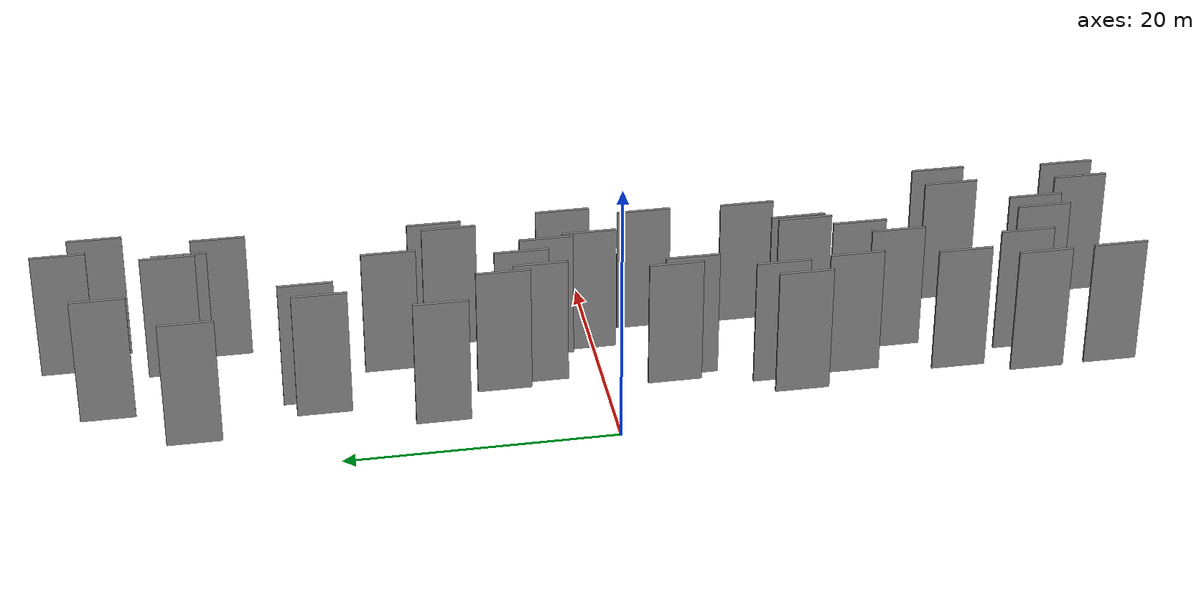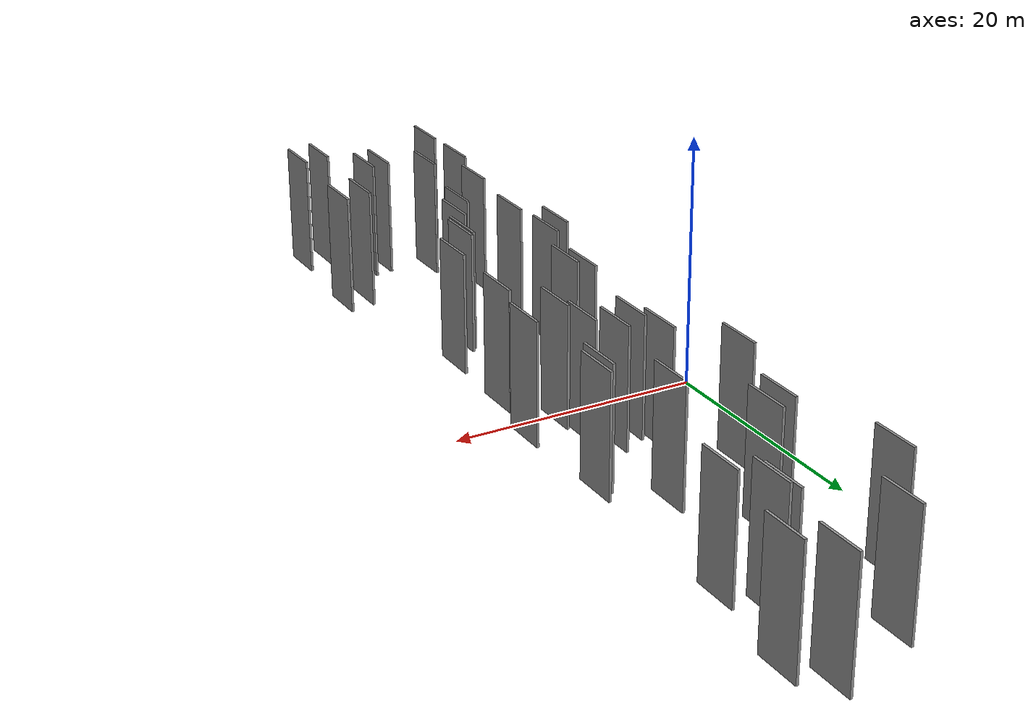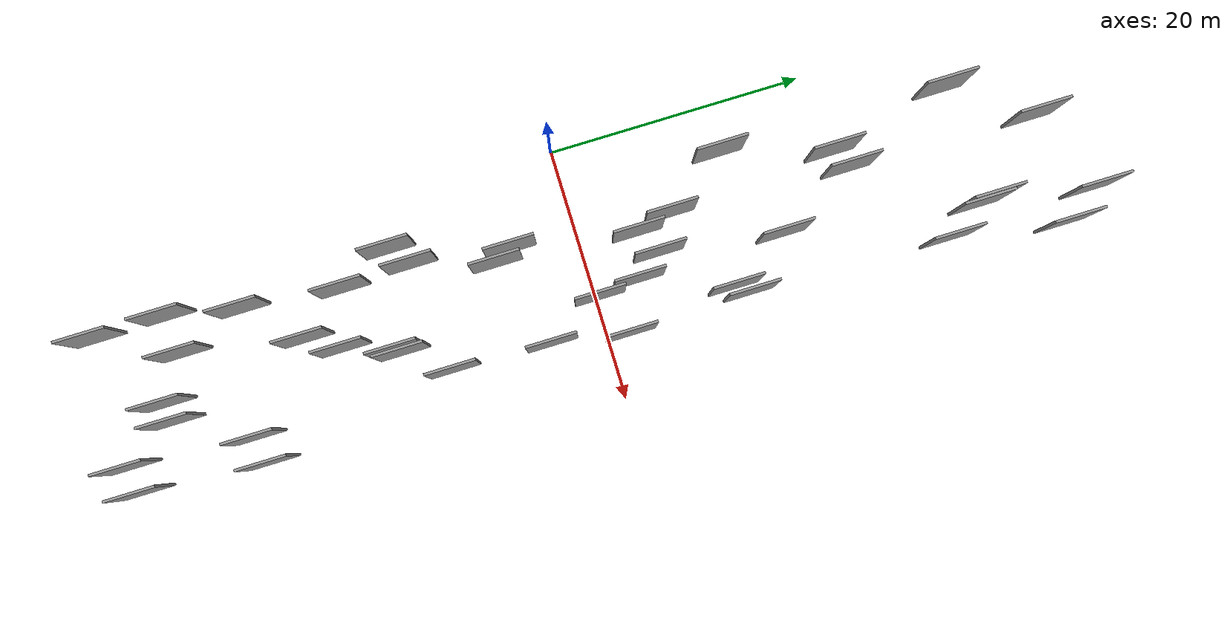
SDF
<sdf version="1.6">
 <world name="default">
  <scene>
   <sky><clouds><speed>12</speed></clouds></sky>
   <ambient>0.4 0.4 0.4 1</ambient>
   <background>0.7 0.7 0.7 1</background>
   <shadows>1</shadows>
  </scene>
  <gravity>0 0 -9.8066</gravity>
  <magnetic_field>6e-06 2.3e-05 -4.2e-05</magnetic_field>
  <physics default="0" name="default_physics" type="ode">
   <ode>
    <solver>
     <type>quick</type>
     <iters>10</iters>
     <sor>1.0</sor>
     <use_dynamic_moi_rescaling>0</use_dynamic_moi_rescaling>
    </solver>
    <constraints>
     <cfm>0</cfm>
     <erp>0.2</erp>
     <contact_max_correcting_vel>100</contact_max_correcting_vel>
     <contact_surface_layer>0.001</contact_surface_layer>
    </constraints>
   </ode>
   <max_step_size>0.004</max_step_size>
   <real_time_factor>1</real_time_factor>
   <real_time_update_rate>250</real_time_update_rate>
  </physics>
  <light name="sun" type="directional">
   <pose>0 0 10 0 0 0</pose>
   <diffuse>0.8 0.8 0.8 1</diffuse>
   <specular>0.2 0.2 0.2 1</specular>
   <attenuation>
    <range>1000</range>
    <constant>0.9</constant>
    <linear>0.01</linear>
    <quadratic>0.001</quadratic>
   </attenuation>
   <direction>-0.5 0.1 -0.9</direction>
  </light>
  <model name="grey_wall_1">
   <static>1</static>
   <pose>16.8751 36.0884 0.0 0.000000 0.000000 1.570796</pose>
   <link name="link">
    <pose>0 0 5.00 0 0 0</pose>
    <collision name="collision"><geometry><box><size>4.00 0.2 10.00</size></box></geometry></collision>
    <visual name="visual">
     <cast_shadows>0</cast_shadows>
     <geometry><box><size>4.00 0.2 10.00</size></box></geometry>
     <material>
      <script>
       <uri>model://grey_wall/materials/scripts</uri>
       <uri>model://grey_wall/materials/textures</uri>
       <name>vrc/grey_wall</name>
      </script>
     </material>
    </visual>
   </link>
  </model>
  <model name="grey_wall_2">
   <static>1</static>
   <pose>11.9350 0.3305 0.0 0.000000 0.000000 1.570796</pose>
   <link name="link">
    <pose>0 0 5.00 0 0 0</pose>
    <collision name="collision"><geometry><box><size>4.00 0.2 10.00</size></box></geometry></collision>
    <visual name="visual">
     <cast_shadows>0</cast_shadows>
     <geometry><box><size>4.00 0.2 10.00</size></box></geometry>
     <material>
      <script>
       <uri>model://grey_wall/materials/scripts</uri>
       <uri>model://grey_wall/materials/textures</uri>
       <name>vrc/grey_wall</name>
      </script>
     </material>
    </visual>
   </link>
  </model>
  <model name="grey_wall_3">
   <static>1</static>
   <pose>8.0137 21.4762 0.0 0.000000 0.000000 1.570796</pose>
   <link name="link">
    <pose>0 0 5.00 0 0 0</pose>
    <collision name="collision"><geometry><box><size>4.00 0.2 10.00</size></box></geometry></collision>
    <visual name="visual">
     <cast_shadows>0</cast_shadows>
     <geometry><box><size>4.00 0.2 10.00</size></box></geometry>
     <material>
      <script>
       <uri>model://grey_wall/materials/scripts</uri>
       <uri>model://grey_wall/materials/textures</uri>
       <name>vrc/grey_wall</name>
      </script>
     </material>
    </visual>
   </link>
  </model>
  <model name="grey_wall_4">
   <static>1</static>
   <pose>13.9811 -37.6866 0.0 0.000000 0.000000 1.570796</pose>
   <link name="link">
    <pose>0 0 5.00 0 0 0</pose>
    <collision name="collision"><geometry><box><size>4.00 0.2 10.00</size></box></geometry></collision>
    <visual name="visual">
     <cast_shadows>0</cast_shadows>
     <geometry><box><size>4.00 0.2 10.00</size></box></geometry>
     <material>
      <script>
       <uri>model://grey_wall/materials/scripts</uri>
       <uri>model://grey_wall/materials/textures</uri>
       <name>vrc/grey_wall</name>
      </script>
     </material>
    </visual>
   </link>
  </model>
  <model name="grey_wall_5">
   <static>1</static>
   <pose>3.7342 -14.1265 0.0 0.000000 0.000000 1.570796</pose>
   <link name="link">
    <pose>0 0 5.00 0 0 0</pose>
    <collision name="collision"><geometry><box><size>4.00 0.2 10.00</size></box></geometry></collision>
    <visual name="visual">
     <cast_shadows>0</cast_shadows>
     <geometry><box><size>4.00 0.2 10.00</size></box></geometry>
     <material>
      <script>
       <uri>model://grey_wall/materials/scripts</uri>
       <uri>model://grey_wall/materials/textures</uri>
       <name>vrc/grey_wall</name>
      </script>
     </material>
    </visual>
   </link>
  </model>
  <model name="grey_wall_6">
   <static>1</static>
   <pose>14.1956 10.4184 0.0 0.000000 0.000000 1.570796</pose>
   <link name="link">
    <pose>0 0 5.00 0 0 0</pose>
    <collision name="collision"><geometry><box><size>4.00 0.2 10.00</size></box></geometry></collision>
    <visual name="visual">
     <cast_shadows>0</cast_shadows>
     <geometry><box><size>4.00 0.2 10.00</size></box></geometry>
     <material>
      <script>
       <uri>model://grey_wall/materials/scripts</uri>
       <uri>model://grey_wall/materials/textures</uri>
       <name>vrc/grey_wall</name>
      </script>
     </material>
    </visual>
   </link>
  </model>
  <model name="grey_wall_7">
   <static>1</static>
   <pose>16.7592 -27.3400 0.0 0.000000 0.000000 1.570796</pose>
   <link name="link">
    <pose>0 0 5.00 0 0 0</pose>
    <collision name="collision"><geometry><box><size>4.00 0.2 10.00</size></box></geometry></collision>
    <visual name="visual">
     <cast_shadows>0</cast_shadows>
     <geometry><box><size>4.00 0.2 10.00</size></box></geometry>
     <material>
      <script>
       <uri>model://grey_wall/materials/scripts</uri>
       <uri>model://grey_wall/materials/textures</uri>
       <name>vrc/grey_wall</name>
      </script>
     </material>
    </visual>
   </link>
  </model>
  <model name="grey_wall_8">
   <static>1</static>
   <pose>11.6335 -15.3026 0.0 0.000000 0.000000 1.570796</pose>
   <link name="link">
    <pose>0 0 5.00 0 0 0</pose>
    <collision name="collision"><geometry><box><size>4.00 0.2 10.00</size></box></geometry></collision>
    <visual name="visual">
     <cast_shadows>0</cast_shadows>
     <geometry><box><size>4.00 0.2 10.00</size></box></geometry>
     <material>
      <script>
       <uri>model://grey_wall/materials/scripts</uri>
       <uri>model://grey_wall/materials/textures</uri>
       <name>vrc/grey_wall</name>
      </script>
     </material>
    </visual>
   </link>
  </model>
  <model name="grey_wall_9">
   <static>1</static>
   <pose>4.1911 30.1464 0.0 0.000000 0.000000 1.570796</pose>
   <link name="link">
    <pose>0 0 5.00 0 0 0</pose>
    <collision name="collision"><geometry><box><size>4.00 0.2 10.00</size></box></geometry></collision>
    <visual name="visual">
     <cast_shadows>0</cast_shadows>
     <geometry><box><size>4.00 0.2 10.00</size></box></geometry>
     <material>
      <script>
       <uri>model://grey_wall/materials/scripts</uri>
       <uri>model://grey_wall/materials/textures</uri>
       <name>vrc/grey_wall</name>
      </script>
     </material>
    </visual>
   </link>
  </model>
  <model name="grey_wall_10">
   <static>1</static>
   <pose>11.2698 -15.7501 0.0 0.000000 0.000000 1.570796</pose>
   <link name="link">
    <pose>0 0 5.00 0 0 0</pose>
    <collision name="collision"><geometry><box><size>4.00 0.2 10.00</size></box></geometry></collision>
    <visual name="visual">
     <cast_shadows>0</cast_shadows>
     <geometry><box><size>4.00 0.2 10.00</size></box></geometry>
     <material>
      <script>
       <uri>model://grey_wall/materials/scripts</uri>
       <uri>model://grey_wall/materials/textures</uri>
       <name>vrc/grey_wall</name>
      </script>
     </material>
    </visual>
   </link>
  </model>
  <model name="grey_wall_11">
   <static>1</static>
   <pose>5.3530 -12.8099 0.0 0.000000 0.000000 1.570796</pose>
   <link name="link">
    <pose>0 0 5.00 0 0 0</pose>
    <collision name="collision"><geometry><box><size>4.00 0.2 10.00</size></box></geometry></collision>
    <visual name="visual">
     <cast_shadows>0</cast_shadows>
     <geometry><box><size>4.00 0.2 10.00</size></box></geometry>
     <material>
      <script>
       <uri>model://grey_wall/materials/scripts</uri>
       <uri>model://grey_wall/materials/textures</uri>
       <name>vrc/grey_wall</name>
      </script>
     </material>
    </visual>
   </link>
  </model>
  <model name="grey_wall_12">
   <static>1</static>
   <pose>3.9442 12.2792 0.0 0.000000 0.000000 1.570796</pose>
   <link name="link">
    <pose>0 0 5.00 0 0 0</pose>
    <collision name="collision"><geometry><box><size>4.00 0.2 10.00</size></box></geometry></collision>
    <visual name="visual">
     <cast_shadows>0</cast_shadows>
     <geometry><box><size>4.00 0.2 10.00</size></box></geometry>
     <material>
      <script>
       <uri>model://grey_wall/materials/scripts</uri>
       <uri>model://grey_wall/materials/textures</uri>
       <name>vrc/grey_wall</name>
      </script>
     </material>
    </visual>
   </link>
  </model>
  <model name="grey_wall_13">
   <static>1</static>
   <pose>6.4200 20.6335 0.0 0.000000 0.000000 1.570796</pose>
   <link name="link">
    <pose>0 0 5.00 0 0 0</pose>
    <collision name="collision"><geometry><box><size>4.00 0.2 10.00</size></box></geometry></collision>
    <visual name="visual">
     <cast_shadows>0</cast_shadows>
     <geometry><box><size>4.00 0.2 10.00</size></box></geometry>
     <material>
      <script>
       <uri>model://grey_wall/materials/scripts</uri>
       <uri>model://grey_wall/materials/textures</uri>
       <name>vrc/grey_wall</name>
      </script>
     </material>
    </visual>
   </link>
  </model>
  <model name="grey_wall_14">
   <static>1</static>
   <pose>7.1862 -6.4948 0.0 0.000000 0.000000 1.570796</pose>
   <link name="link">
    <pose>0 0 5.00 0 0 0</pose>
    <collision name="collision"><geometry><box><size>4.00 0.2 10.00</size></box></geometry></collision>
    <visual name="visual">
     <cast_shadows>0</cast_shadows>
     <geometry><box><size>4.00 0.2 10.00</size></box></geometry>
     <material>
      <script>
       <uri>model://grey_wall/materials/scripts</uri>
       <uri>model://grey_wall/materials/textures</uri>
       <name>vrc/grey_wall</name>
      </script>
     </material>
    </visual>
   </link>
  </model>
  <model name="grey_wall_15">
   <static>1</static>
   <pose>3.7817 -37.5315 0.0 0.000000 0.000000 1.570796</pose>
   <link name="link">
    <pose>0 0 5.00 0 0 0</pose>
    <collision name="collision"><geometry><box><size>4.00 0.2 10.00</size></box></geometry></collision>
    <visual name="visual">
     <cast_shadows>0</cast_shadows>
     <geometry><box><size>4.00 0.2 10.00</size></box></geometry>
     <material>
      <script>
       <uri>model://grey_wall/materials/scripts</uri>
       <uri>model://grey_wall/materials/textures</uri>
       <name>vrc/grey_wall</name>
      </script>
     </material>
    </visual>
   </link>
  </model>
  <model name="grey_wall_16">
   <static>1</static>
   <pose>5.6121 -18.3275 0.0 0.000000 0.000000 1.570796</pose>
   <link name="link">
    <pose>0 0 5.00 0 0 0</pose>
    <collision name="collision"><geometry><box><size>4.00 0.2 10.00</size></box></geometry></collision>
    <visual name="visual">
     <cast_shadows>0</cast_shadows>
     <geometry><box><size>4.00 0.2 10.00</size></box></geometry>
     <material>
      <script>
       <uri>model://grey_wall/materials/scripts</uri>
       <uri>model://grey_wall/materials/textures</uri>
       <name>vrc/grey_wall</name>
      </script>
     </material>
    </visual>
   </link>
  </model>
  <model name="grey_wall_17">
   <static>1</static>
   <pose>3.6987 -31.8953 0.0 0.000000 0.000000 1.570796</pose>
   <link name="link">
    <pose>0 0 5.00 0 0 0</pose>
    <collision name="collision"><geometry><box><size>4.00 0.2 10.00</size></box></geometry></collision>
    <visual name="visual">
     <cast_shadows>0</cast_shadows>
     <geometry><box><size>4.00 0.2 10.00</size></box></geometry>
     <material>
      <script>
       <uri>model://grey_wall/materials/scripts</uri>
       <uri>model://grey_wall/materials/textures</uri>
       <name>vrc/grey_wall</name>
      </script>
     </material>
    </visual>
   </link>
  </model>
  <model name="grey_wall_18">
   <static>1</static>
   <pose>7.3652 7.3415 0.0 0.000000 0.000000 1.570796</pose>
   <link name="link">
    <pose>0 0 5.00 0 0 0</pose>
    <collision name="collision"><geometry><box><size>4.00 0.2 10.00</size></box></geometry></collision>
    <visual name="visual">
     <cast_shadows>0</cast_shadows>
     <geometry><box><size>4.00 0.2 10.00</size></box></geometry>
     <material>
      <script>
       <uri>model://grey_wall/materials/scripts</uri>
       <uri>model://grey_wall/materials/textures</uri>
       <name>vrc/grey_wall</name>
      </script>
     </material>
    </visual>
   </link>
  </model>
  <model name="grey_wall_19">
   <static>1</static>
   <pose>8.2868 36.1251 0.0 0.000000 0.000000 1.570796</pose>
   <link name="link">
    <pose>0 0 5.00 0 0 0</pose>
    <collision name="collision"><geometry><box><size>4.00 0.2 10.00</size></box></geometry></collision>
    <visual name="visual">
     <cast_shadows>0</cast_shadows>
     <geometry><box><size>4.00 0.2 10.00</size></box></geometry>
     <material>
      <script>
       <uri>model://grey_wall/materials/scripts</uri>
       <uri>model://grey_wall/materials/textures</uri>
       <name>vrc/grey_wall</name>
      </script>
     </material>
    </visual>
   </link>
  </model>
  <model name="grey_wall_20">
   <static>1</static>
   <pose>13.3935 30.9675 0.0 0.000000 0.000000 1.570796</pose>
   <link name="link">
    <pose>0 0 5.00 0 0 0</pose>
    <collision name="collision"><geometry><box><size>4.00 0.2 10.00</size></box></geometry></collision>
    <visual name="visual">
     <cast_shadows>0</cast_shadows>
     <geometry><box><size>4.00 0.2 10.00</size></box></geometry>
     <material>
      <script>
       <uri>model://grey_wall/materials/scripts</uri>
       <uri>model://grey_wall/materials/textures</uri>
       <name>vrc/grey_wall</name>
      </script>
     </material>
    </visual>
   </link>
  </model>
  <model name="grey_wall_21">
   <static>1</static>
   <pose>11.3845 15.1704 0.0 0.000000 0.000000 1.570796</pose>
   <link name="link">
    <pose>0 0 5.00 0 0 0</pose>
    <collision name="collision"><geometry><box><size>4.00 0.2 10.00</size></box></geometry></collision>
    <visual name="visual">
     <cast_shadows>0</cast_shadows>
     <geometry><box><size>4.00 0.2 10.00</size></box></geometry>
     <material>
      <script>
       <uri>model://grey_wall/materials/scripts</uri>
       <uri>model://grey_wall/materials/textures</uri>
       <name>vrc/grey_wall</name>
      </script>
     </material>
    </visual>
   </link>
  </model>
  <model name="grey_wall_22">
   <static>1</static>
   <pose>8.4756 -22.1381 0.0 0.000000 0.000000 1.570796</pose>
   <link name="link">
    <pose>0 0 5.00 0 0 0</pose>
    <collision name="collision"><geometry><box><size>4.00 0.2 10.00</size></box></geometry></collision>
    <visual name="visual">
     <cast_shadows>0</cast_shadows>
     <geometry><box><size>4.00 0.2 10.00</size></box></geometry>
     <material>
      <script>
       <uri>model://grey_wall/materials/scripts</uri>
       <uri>model://grey_wall/materials/textures</uri>
       <name>vrc/grey_wall</name>
      </script>
     </material>
    </visual>
   </link>
  </model>
  <model name="grey_wall_23">
   <static>1</static>
   <pose>4.8376 -26.2017 0.0 0.000000 0.000000 1.570796</pose>
   <link name="link">
    <pose>0 0 5.00 0 0 0</pose>
    <collision name="collision"><geometry><box><size>4.00 0.2 10.00</size></box></geometry></collision>
    <visual name="visual">
     <cast_shadows>0</cast_shadows>
     <geometry><box><size>4.00 0.2 10.00</size></box></geometry>
     <material>
      <script>
       <uri>model://grey_wall/materials/scripts</uri>
       <uri>model://grey_wall/materials/textures</uri>
       <name>vrc/grey_wall</name>
      </script>
     </material>
    </visual>
   </link>
  </model>
  <model name="grey_wall_24">
   <static>1</static>
   <pose>16.1404 -37.2414 0.0 0.000000 0.000000 1.570796</pose>
   <link name="link">
    <pose>0 0 5.00 0 0 0</pose>
    <collision name="collision"><geometry><box><size>4.00 0.2 10.00</size></box></geometry></collision>
    <visual name="visual">
     <cast_shadows>0</cast_shadows>
     <geometry><box><size>4.00 0.2 10.00</size></box></geometry>
     <material>
      <script>
       <uri>model://grey_wall/materials/scripts</uri>
       <uri>model://grey_wall/materials/textures</uri>
       <name>vrc/grey_wall</name>
      </script>
     </material>
    </visual>
   </link>
  </model>
  <model name="grey_wall_25">
   <static>1</static>
   <pose>15.3138 1.7862 0.0 0.000000 0.000000 1.570796</pose>
   <link name="link">
    <pose>0 0 5.00 0 0 0</pose>
    <collision name="collision"><geometry><box><size>4.00 0.2 10.00</size></box></geometry></collision>
    <visual name="visual">
     <cast_shadows>0</cast_shadows>
     <geometry><box><size>4.00 0.2 10.00</size></box></geometry>
     <material>
      <script>
       <uri>model://grey_wall/materials/scripts</uri>
       <uri>model://grey_wall/materials/textures</uri>
       <name>vrc/grey_wall</name>
      </script>
     </material>
    </visual>
   </link>
  </model>
  <model name="grey_wall_26">
   <static>1</static>
   <pose>14.3155 -4.1936 0.0 0.000000 0.000000 1.570796</pose>
   <link name="link">
    <pose>0 0 5.00 0 0 0</pose>
    <collision name="collision"><geometry><box><size>4.00 0.2 10.00</size></box></geometry></collision>
    <visual name="visual">
     <cast_shadows>0</cast_shadows>
     <geometry><box><size>4.00 0.2 10.00</size></box></geometry>
     <material>
      <script>
       <uri>model://grey_wall/materials/scripts</uri>
       <uri>model://grey_wall/materials/textures</uri>
       <name>vrc/grey_wall</name>
      </script>
     </material>
    </visual>
   </link>
  </model>
  <model name="grey_wall_27">
   <static>1</static>
   <pose>8.0430 4.5285 0.0 0.000000 0.000000 1.570796</pose>
   <link name="link">
    <pose>0 0 5.00 0 0 0</pose>
    <collision name="collision"><geometry><box><size>4.00 0.2 10.00</size></box></geometry></collision>
    <visual name="visual">
     <cast_shadows>0</cast_shadows>
     <geometry><box><size>4.00 0.2 10.00</size></box></geometry>
     <material>
      <script>
       <uri>model://grey_wall/materials/scripts</uri>
       <uri>model://grey_wall/materials/textures</uri>
       <name>vrc/grey_wall</name>
      </script>
     </material>
    </visual>
   </link>
  </model>
  <model name="grey_wall_28">
   <static>1</static>
   <pose>15.4421 27.2131 0.0 0.000000 0.000000 1.570796</pose>
   <link name="link">
    <pose>0 0 5.00 0 0 0</pose>
    <collision name="collision"><geometry><box><size>4.00 0.2 10.00</size></box></geometry></collision>
    <visual name="visual">
     <cast_shadows>0</cast_shadows>
     <geometry><box><size>4.00 0.2 10.00</size></box></geometry>
     <material>
      <script>
       <uri>model://grey_wall/materials/scripts</uri>
       <uri>model://grey_wall/materials/textures</uri>
       <name>vrc/grey_wall</name>
      </script>
     </material>
    </visual>
   </link>
  </model>
  <model name="grey_wall_29">
   <static>1</static>
   <pose>6.4164 -5.1505 0.0 0.000000 0.000000 1.570796</pose>
   <link name="link">
    <pose>0 0 5.00 0 0 0</pose>
    <collision name="collision"><geometry><box><size>4.00 0.2 10.00</size></box></geometry></collision>
    <visual name="visual">
     <cast_shadows>0</cast_shadows>
     <geometry><box><size>4.00 0.2 10.00</size></box></geometry>
     <material>
      <script>
       <uri>model://grey_wall/materials/scripts</uri>
       <uri>model://grey_wall/materials/textures</uri>
       <name>vrc/grey_wall</name>
      </script>
     </material>
    </visual>
   </link>
  </model>
  <model name="grey_wall_30">
   <static>1</static>
   <pose>14.5997 -27.7837 0.0 0.000000 0.000000 1.570796</pose>
   <link name="link">
    <pose>0 0 5.00 0 0 0</pose>
    <collision name="collision"><geometry><box><size>4.00 0.2 10.00</size></box></geometry></collision>
    <visual name="visual">
     <cast_shadows>0</cast_shadows>
     <geometry><box><size>4.00 0.2 10.00</size></box></geometry>
     <material>
      <script>
       <uri>model://grey_wall/materials/scripts</uri>
       <uri>model://grey_wall/materials/textures</uri>
       <name>vrc/grey_wall</name>
      </script>
     </material>
    </visual>
   </link>
  </model>
  <model name="grey_wall_31">
   <static>1</static>
   <pose>13.6114 30.1207 0.0 0.000000 0.000000 1.570796</pose>
   <link name="link">
    <pose>0 0 5.00 0 0 0</pose>
    <collision name="collision"><geometry><box><size>4.00 0.2 10.00</size></box></geometry></collision>
    <visual name="visual">
     <cast_shadows>0</cast_shadows>
     <geometry><box><size>4.00 0.2 10.00</size></box></geometry>
     <material>
      <script>
       <uri>model://grey_wall/materials/scripts</uri>
       <uri>model://grey_wall/materials/textures</uri>
       <name>vrc/grey_wall</name>
      </script>
     </material>
    </visual>
   </link>
  </model>
  <model name="grey_wall_32">
   <static>1</static>
   <pose>10.0297 5.6213 0.0 0.000000 0.000000 1.570796</pose>
   <link name="link">
    <pose>0 0 5.00 0 0 0</pose>
    <collision name="collision"><geometry><box><size>4.00 0.2 10.00</size></box></geometry></collision>
    <visual name="visual">
     <cast_shadows>0</cast_shadows>
     <geometry><box><size>4.00 0.2 10.00</size></box></geometry>
     <material>
      <script>
       <uri>model://grey_wall/materials/scripts</uri>
       <uri>model://grey_wall/materials/textures</uri>
       <name>vrc/grey_wall</name>
      </script>
     </material>
    </visual>
   </link>
  </model>
  <model name="grey_wall_33">
   <static>1</static>
   <pose>14.9207 38.7714 0.0 0.000000 0.000000 1.570796</pose>
   <link name="link">
    <pose>0 0 5.00 0 0 0</pose>
    <collision name="collision"><geometry><box><size>4.00 0.2 10.00</size></box></geometry></collision>
    <visual name="visual">
     <cast_shadows>0</cast_shadows>
     <geometry><box><size>4.00 0.2 10.00</size></box></geometry>
     <material>
      <script>
       <uri>model://grey_wall/materials/scripts</uri>
       <uri>model://grey_wall/materials/textures</uri>
       <name>vrc/grey_wall</name>
      </script>
     </material>
    </visual>
   </link>
  </model>
  <model name="grey_wall_34">
   <static>1</static>
   <pose>14.0630 -11.9454 0.0 0.000000 0.000000 1.570796</pose>
   <link name="link">
    <pose>0 0 5.00 0 0 0</pose>
    <collision name="collision"><geometry><box><size>4.00 0.2 10.00</size></box></geometry></collision>
    <visual name="visual">
     <cast_shadows>0</cast_shadows>
     <geometry><box><size>4.00 0.2 10.00</size></box></geometry>
     <material>
      <script>
       <uri>model://grey_wall/materials/scripts</uri>
       <uri>model://grey_wall/materials/textures</uri>
       <name>vrc/grey_wall</name>
      </script>
     </material>
    </visual>
   </link>
  </model>
  <model name="grey_wall_35">
   <static>1</static>
   <pose>10.0267 -19.5830 0.0 0.000000 0.000000 1.570796</pose>
   <link name="link">
    <pose>0 0 5.00 0 0 0</pose>
    <collision name="collision"><geometry><box><size>4.00 0.2 10.00</size></box></geometry></collision>
    <visual name="visual">
     <cast_shadows>0</cast_shadows>
     <geometry><box><size>4.00 0.2 10.00</size></box></geometry>
     <material>
      <script>
       <uri>model://grey_wall/materials/scripts</uri>
       <uri>model://grey_wall/materials/textures</uri>
       <name>vrc/grey_wall</name>
      </script>
     </material>
    </visual>
   </link>
  </model>
  <model name="grey_wall_36">
   <static>1</static>
   <pose>10.1382 -33.7104 0.0 0.000000 0.000000 1.570796</pose>
   <link name="link">
    <pose>0 0 5.00 0 0 0</pose>
    <collision name="collision"><geometry><box><size>4.00 0.2 10.00</size></box></geometry></collision>
    <visual name="visual">
     <cast_shadows>0</cast_shadows>
     <geometry><box><size>4.00 0.2 10.00</size></box></geometry>
     <material>
      <script>
       <uri>model://grey_wall/materials/scripts</uri>
       <uri>model://grey_wall/materials/textures</uri>
       <name>vrc/grey_wall</name>
      </script>
     </material>
    </visual>
   </link>
  </model>
  <model name="grey_wall_37">
   <static>1</static>
   <pose>11.6366 -33.4821 0.0 0.000000 0.000000 1.570796</pose>
   <link name="link">
    <pose>0 0 5.00 0 0 0</pose>
    <collision name="collision"><geometry><box><size>4.00 0.2 10.00</size></box></geometry></collision>
    <visual name="visual">
     <cast_shadows>0</cast_shadows>
     <geometry><box><size>4.00 0.2 10.00</size></box></geometry>
     <material>
      <script>
       <uri>model://grey_wall/materials/scripts</uri>
       <uri>model://grey_wall/materials/textures</uri>
       <name>vrc/grey_wall</name>
      </script>
     </material>
    </visual>
   </link>
  </model>
  <model name="grey_wall_38">
   <static>1</static>
   <pose>11.5333 3.5737 0.0 0.000000 0.000000 1.570796</pose>
   <link name="link">
    <pose>0 0 5.00 0 0 0</pose>
    <collision name="collision"><geometry><box><size>4.00 0.2 10.00</size></box></geometry></collision>
    <visual name="visual">
     <cast_shadows>0</cast_shadows>
     <geometry><box><size>4.00 0.2 10.00</size></box></geometry>
     <material>
      <script>
       <uri>model://grey_wall/materials/scripts</uri>
       <uri>model://grey_wall/materials/textures</uri>
       <name>vrc/grey_wall</name>
      </script>
     </material>
    </visual>
   </link>
  </model>
  <model name="grey_wall_39">
   <static>1</static>
   <pose>14.9829 11.4152 0.0 0.000000 0.000000 1.570796</pose>
   <link name="link">
    <pose>0 0 5.00 0 0 0</pose>
    <collision name="collision"><geometry><box><size>4.00 0.2 10.00</size></box></geometry></collision>
    <visual name="visual">
     <cast_shadows>0</cast_shadows>
     <geometry><box><size>4.00 0.2 10.00</size></box></geometry>
     <material>
      <script>
       <uri>model://grey_wall/materials/scripts</uri>
       <uri>model://grey_wall/materials/textures</uri>
       <name>vrc/grey_wall</name>
      </script>
     </material>
    </visual>
   </link>
  </model>
  <model name="grey_wall_40">
   <static>1</static>
   <pose>6.8029 -31.4599 0.0 0.000000 0.000000 1.570796</pose>
   <link name="link">
    <pose>0 0 5.00 0 0 0</pose>
    <collision name="collision"><geometry><box><size>4.00 0.2 10.00</size></box></geometry></collision>
    <visual name="visual">
     <cast_shadows>0</cast_shadows>
     <geometry><box><size>4.00 0.2 10.00</size></box></geometry>
     <material>
      <script>
       <uri>model://grey_wall/materials/scripts</uri>
       <uri>model://grey_wall/materials/textures</uri>
       <name>vrc/grey_wall</name>
      </script>
     </material>
    </visual>
   </link>
  </model>
 </world>
</sdf>
